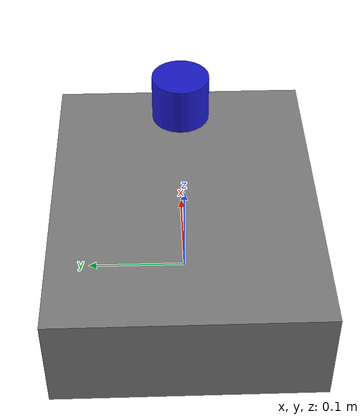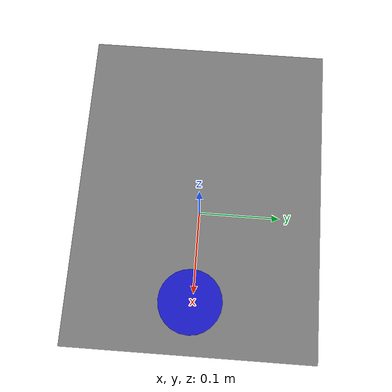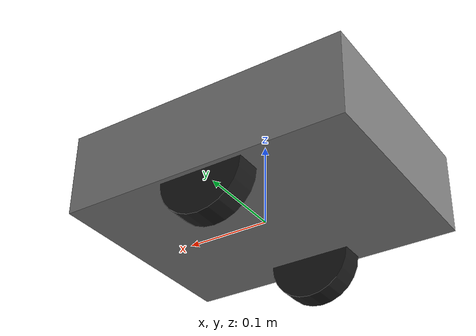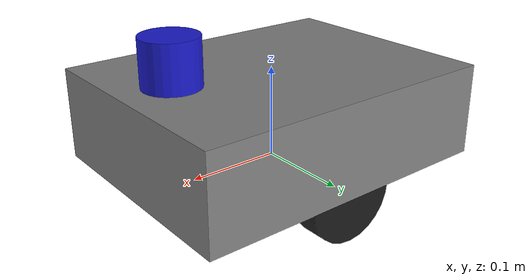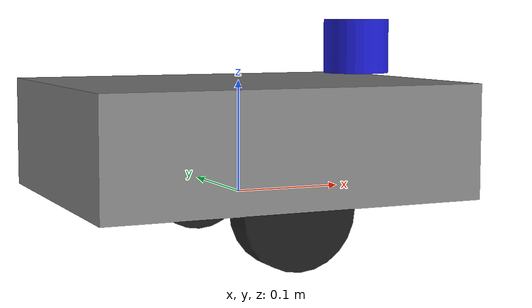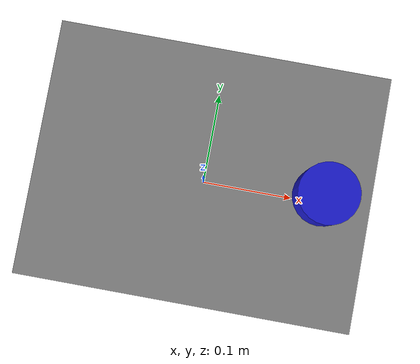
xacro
<?xml version="1.0"?>
<robot name="diffbot" xmlns:xacro="http://www.ros.org/wiki/xacro">
  <xacro:property name="base_length" value="0.34"/>
  <xacro:property name="base_width" value="0.26"/>
  <xacro:property name="base_height" value="0.10"/>
  <xacro:property name="wheel_radius" value="0.05"/>
  <xacro:property name="wheel_width" value="0.03"/>
  <xacro:property name="wheel_sep" value="0.22"/>

  <link name="base_footprint"/>

  <link name="base_link">
    <visual>
      <geometry>
        <box size="${base_length} ${base_width} ${base_height}"/>
      </geometry>
      <material name="gray">
        <color rgba="0.5 0.5 0.5 1.0"/>
      </material>
    </visual>
    <collision>
      <geometry>
        <box size="${base_length} ${base_width} ${base_height}"/>
      </geometry>
    </collision>
    <inertial>
      <origin xyz="0 0 0"/>
      <mass value="5.0"/>
      <inertia ixx="0.08" ixy="0.0" ixz="0.0" iyy="0.08" iyz="0.0" izz="0.10"/>
    </inertial>
  </link>

  <joint name="base_footprint_joint" type="fixed">
    <parent link="base_footprint"/>
    <child link="base_link"/>
    <origin xyz="0 0 ${base_height/2}" rpy="0 0 0"/>
  </joint>

  <link name="left_wheel_link">
    <visual>
      <origin xyz="0 0 0" rpy="1.5708 0 0"/>
      <geometry>
        <cylinder radius="${wheel_radius}" length="${wheel_width}"/>
      </geometry>
      <material name="black">
        <color rgba="0.1 0.1 0.1 1.0"/>
      </material>
    </visual>
    <collision>
      <origin xyz="0 0 0" rpy="1.5708 0 0"/>
      <geometry>
        <cylinder radius="${wheel_radius}" length="${wheel_width}"/>
      </geometry>
    </collision>
    <inertial>
      <mass value="0.5"/>
      <inertia ixx="0.001" ixy="0.0" ixz="0.0" iyy="0.001" iyz="0.0" izz="0.001"/>
    </inertial>
  </link>

  <link name="right_wheel_link">
    <visual>
      <origin xyz="0 0 0" rpy="1.5708 0 0"/>
      <geometry>
        <cylinder radius="${wheel_radius}" length="${wheel_width}"/>
      </geometry>
      <material name="black">
        <color rgba="0.1 0.1 0.1 1.0"/>
      </material>
    </visual>
    <collision>
      <origin xyz="0 0 0" rpy="1.5708 0 0"/>
      <geometry>
        <cylinder radius="${wheel_radius}" length="${wheel_width}"/>
      </geometry>
    </collision>
    <inertial>
      <mass value="0.5"/>
      <inertia ixx="0.001" ixy="0.0" ixz="0.0" iyy="0.001" iyz="0.0" izz="0.001"/>
    </inertial>
  </link>

  <joint name="left_wheel_joint" type="continuous">
    <parent link="base_link"/>
    <child link="left_wheel_link"/>
    <origin xyz="0 ${wheel_sep/2} ${-base_height/2}" rpy="0 0 0"/>
    <axis xyz="0 1 0"/>
  </joint>

  <joint name="right_wheel_joint" type="continuous">
    <parent link="base_link"/>
    <child link="right_wheel_link"/>
    <origin xyz="0 ${-wheel_sep/2} ${-base_height/2}" rpy="0 0 0"/>
    <axis xyz="0 1 0"/>
  </joint>

  <link name="lidar_link">
    <visual>
      <geometry>
        <cylinder radius="0.03" length="0.05"/>
      </geometry>
      <material name="blue">
        <color rgba="0.1 0.1 0.8 1.0"/>
      </material>
    </visual>
  </link>

  <joint name="lidar_joint" type="fixed">
    <parent link="base_link"/>
    <child link="lidar_link"/>
    <origin xyz="0.12 0 0.08" rpy="0 0 0"/>
  </joint>

  <gazebo>
    <plugin name="diff_drive" filename="libgazebo_ros_diff_drive.so">
      <left_joint>left_wheel_joint</left_joint>
      <right_joint>right_wheel_joint</right_joint>
      <wheel_separation>${wheel_sep}</wheel_separation>
      <wheel_diameter>${2*wheel_radius}</wheel_diameter>
      <max_wheel_torque>5.0</max_wheel_torque>
      <max_wheel_acceleration>4.0</max_wheel_acceleration>
      <publish_odom>true</publish_odom>
      <publish_odom_tf>true</publish_odom_tf>
      <publish_wheel_tf>false</publish_wheel_tf>
      <odometry_topic>odom</odometry_topic>
      <odometry_frame>odom</odometry_frame>
      <robot_base_frame>base_link</robot_base_frame>
      <command_topic>cmd_vel</command_topic>
    </plugin>
  </gazebo>

  <gazebo reference="lidar_link">
    <sensor name="scan" type="ray">
      <always_on>true</always_on>
      <visualize>true</visualize>
      <update_rate>10.0</update_rate>
      <ray>
        <scan>
          <horizontal>
            <samples>720</samples>
            <resolution>1</resolution>
            <min_angle>-3.14159</min_angle>
            <max_angle>3.14159</max_angle>
          </horizontal>
        </scan>
        <range>
          <min>0.12</min>
          <max>12.0</max>
          <resolution>0.01</resolution>
        </range>
      </ray>
      <plugin name="lidar_plugin" filename="libgazebo_ros_ray_sensor.so">
        <ros>
          <remapping>~/out:=scan</remapping>
        </ros>
        <output_type>sensor_msgs/LaserScan</output_type>
        <frame_name>lidar_link</frame_name>
      </plugin>
    </sensor>
  </gazebo>
</robot>
